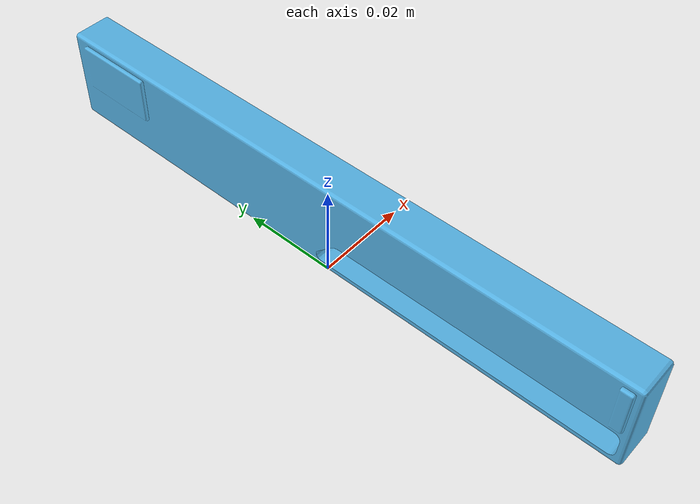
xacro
<?xml version="1.0" ?>
<robot name="r200" xmlns:xacro="http://www.ros.org/wiki/xacro">

     <link name="r200/base_link" />

     <joint name="r200_joint" type="fixed">
		<origin xyz="0 0 0" rpy="0 0 0" />
		<parent link="r200/base_link" />
 		<child link="realsense_camera_link" />
     </joint>

     <link name="realsense_camera_link">
	<inertial>
		<mass value="0.0615752"/>
		<origin rpy="0 0 0" xyz="0 0 0.015"/>
		<inertia ixx="9.108e-05" ixy="0" ixz="0" iyy="2.51e-06" iyz="0" izz="8.931e-05"/>
	</inertial>

	<collision name="realsense_camera__collision">
	    <origin rpy="0  0  0" xyz="0     0     0.015"/>
	    <geometry>
		<box size="0.0078 0.130 0.0192"/>
	    </geometry>
	</collision>

	<visual name="realsense_camera__visual">
	    <origin rpy="0  0  0" xyz="0     0     0.015"/>
	    <geometry>
		<mesh filename="package://realsense_gazebo_plugin/models/realsense_camera/meshes/realsense.dae" scale="1.0 1.0 1.0"/>
	    </geometry>
	</visual>
     </link>

</robot>
